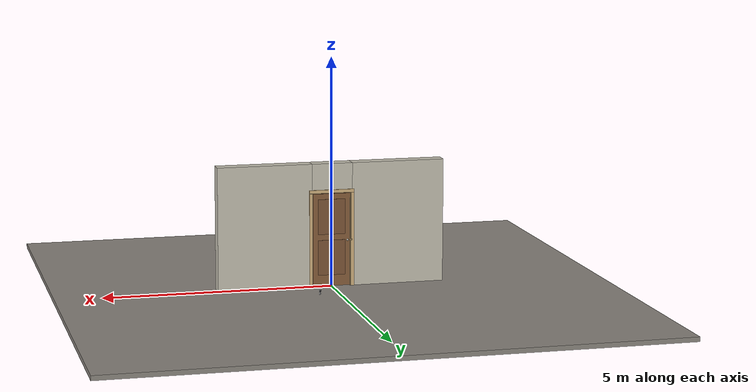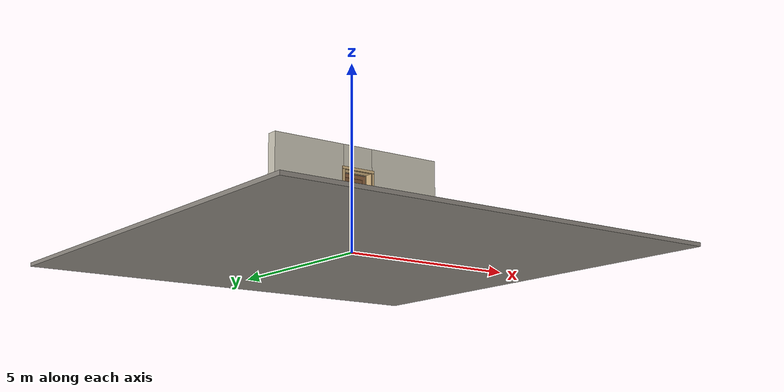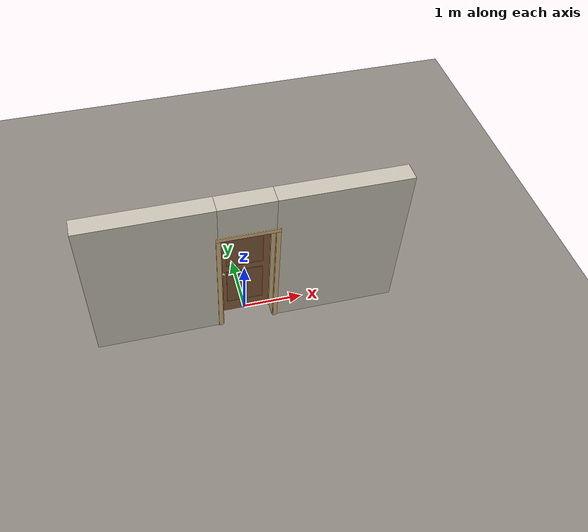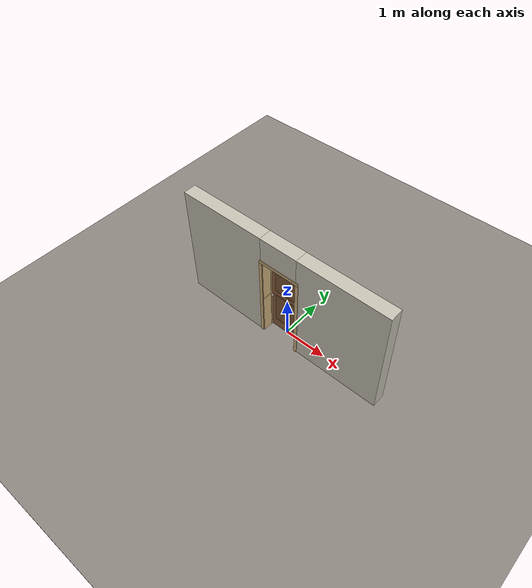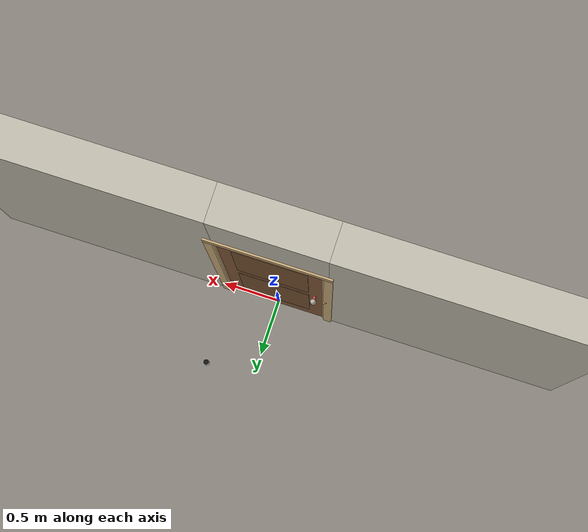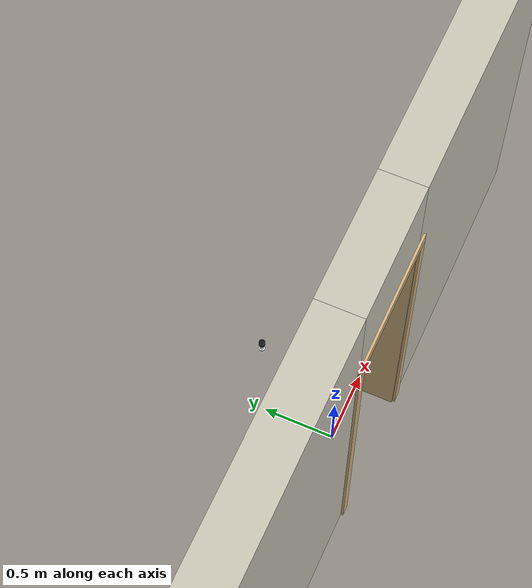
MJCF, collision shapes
<?xml version="1.0" ?>
<mujoco model="db0392_swing_single_full">
  <compiler angle="radian" meshdir="../../hardware" texturedir="../../textures" autolimits="true" inertiafromgeom="false"/>
  <option timestep="0.002" integrator="implicitfast" cone="elliptic" impratio="10" noslip_iterations="3">
    <flag multiccd="enable"/>
  </option>
  <size memory="16M"/>
  <default>
    <geom condim="4" solref="0.005 1" solimp="0.95 0.99 0.001"/>
    <joint solreflimit="0.005 1" solimplimit="0.95 0.99 0.001"/>
    <tendon solreflimit="0.005 1"/>
    <equality solref="0.002 1"/>
  </default>
  <visual>
    <headlight ambient="0.4 0.4 0.4" diffuse="0.7 0.7 0.7" specular="0.2 0.2 0.2"/>
    <quality shadowsize="4096"/>
    <map znear="0.01" zfar="60"/>
  </visual>
  <asset>
    <mesh name="hinge_96510cf394" file="hinge_96510cf394.obj"/>
    <mesh name="hinge_jamb_7fd4ca52b2" file="hinge_jamb_7fd4ca52b2.obj"/>
    <mesh name="knob_248d825e64" file="knob_248d825e64.obj"/>
    <mesh name="knob_d1888f6f03" file="knob_d1888f6f03.obj"/>
    <material name="mat_floor" rgba="0.55 0.53 0.5 1" specular="0.2" shininess="0.15" reflectance="0"/>
    <material name="mat_wall" rgba="0.78 0.76 0.7 1" specular="0.2" shininess="0.1" reflectance="0"/>
    <material name="mat_leaf" rgba="0.534 0.368 0.233 1" specular="0.2" shininess="0.5" reflectance="0"/>
    <material name="mat_leaf_panel" rgba="0.491 0.339 0.214 1" specular="0.2" shininess="0.5" reflectance="0"/>
    <material name="mat_hinge" rgba="0.65 0.66 0.68 1" specular="0.74" shininess="0.5" reflectance="0.36"/>
    <material name="mat_op_nickel_satin" rgba="0.72 0.7 0.66 1" specular="0.8" shininess="0.65" reflectance="0.4"/>
    <material name="mat_trim" rgba="0.85 0.66 0.3 1" specular="0.8" shininess="0.75" reflectance="0.4"/>
    <material name="mat_bolt" rgba="0.85 0.66 0.3 1" specular="0.8" shininess="0.75" reflectance="0.4"/>
    <material name="mat_frame" rgba="0.82 0.7 0.5 1" specular="0.2" shininess="0.45" reflectance="0"/>
    <material name="mat_seal" rgba="0.1 0.1 0.1 1" specular="0.2" shininess="0.1" reflectance="0"/>
    <material name="mat_bumper_stop" rgba="0.08 0.08 0.08 1" specular="0.2" shininess="0.1" reflectance="0"/>
    <material name="mat_stop_base" rgba="0.9 0.9 0.92 1" specular="0.8" shininess="0.9" reflectance="0.4"/>
    <texture name="skybox" type="skybox" builtin="gradient" rgb1="0.6 0.7 0.85" rgb2="0.9 0.92 0.95" width="256" height="256"/>
  </asset>
  <worldbody>
    <light name="sun" pos="1.5 -2.5 4" dir="-0.3 0.5 -0.8" directional="true" diffuse="0.8 0.8 0.8" specular="0.3 0.3 0.3" castshadow="true"/>
    <light name="fill" pos="-1.5 2.5 3" dir="0.3 -0.5 -0.7" directional="true" diffuse="0.35 0.35 0.4" castshadow="false"/>
    <camera name="robot_view" pos="0 -2.667687 1.734312" xyaxes="1 0 0 0 0.26963 0.962964" fovy="52"/>
    <camera name="far_view" pos="0 2.416687 1.734312" xyaxes="-1 0 0 0 -0.26963 0.962964" fovy="52"/>
    <camera name="iso" pos="-1.932062 -2.260938 2.141063" xyaxes="0.741536 -0.670913 0 0.242917 0.268487 0.932151" fovy="46"/>
    <camera name="detail_handle" pos="-0.166 -0.864 1.296" xyaxes="0.97561 0.219512 0 -0.070934 0.315262 0.94635" fovy="38"/>
    <geom name="floor" type="box" size="6 6 0.05" pos="0 0 -0.05" material="mat_floor" group="0" contype="1" conaffinity="1" friction="0.8 0.005 0.0001" density="2400"/>
    <geom name="wall_left" type="box" size="1.0205 0.15 1.35" pos="-1.4795 -0.1255 1.35" material="mat_wall" group="0" contype="1" conaffinity="1" friction="0.6 0.005 0.0001" density="800"/>
    <geom name="wall_right" type="box" size="1.0355 0.15 1.35" pos="1.4645 -0.1255 1.35" material="mat_wall" group="0" contype="1" conaffinity="1" friction="0.6 0.005 0.0001" density="800"/>
    <geom name="wall_header" type="box" size="0.444 0.15 0.303" pos="-0.015 -0.1255 2.397" material="mat_wall" group="0" contype="1" conaffinity="1" friction="0.6 0.005 0.0001" density="800"/>
    <geom name="hinge_0_jamb" type="mesh" mesh="hinge_jamb_7fd4ca52b2" pos="0.407 0.0245 0.259" quat="0 0 0 1" material="mat_hinge" group="1" contype="0" conaffinity="0" density="7850"/>
    <geom name="hinge_1_jamb" type="mesh" mesh="hinge_jamb_7fd4ca52b2" pos="0.407 0.0245 1.025" quat="0 0 0 1" material="mat_hinge" group="1" contype="0" conaffinity="0" density="7850"/>
    <geom name="hinge_2_jamb" type="mesh" mesh="hinge_jamb_7fd4ca52b2" pos="0.407 0.0245 1.861" quat="0 0 0 1" material="mat_hinge" group="1" contype="0" conaffinity="0" density="7850"/>
    <geom name="jamb_hinge" type="box" size="0.0095 0.15 1.0225" pos="0.4195 -0.1255 1.0225" material="mat_frame" group="0" contype="1" conaffinity="1" friction="0.6 0.005 0.0001" density="400"/>
    <geom name="strike_1016_wall_n" type="box" size="0.0245 0.133825 0.0167" pos="-0.4345 -0.141675 1.016" material="mat_frame" group="0" contype="1" conaffinity="1" friction="0.6 0.005 0.0001" density="400"/>
    <geom name="strike_1016_wall_p" type="box" size="0.0245 0.008 0.0167" pos="-0.4345 0.01585 1.016" material="mat_frame" group="0" contype="1" conaffinity="1" friction="0.6 0.005 0.0001" density="400"/>
    <geom name="strike_1016_ramp" type="box" size="0.0245 0.01649 0.0167" pos="-0.439136 0.028673 1.016" quat="0.977148 0 0 0.212558" material="mat_frame" group="0" contype="1" conaffinity="1" friction="0.12 0.005 0.0001" density="400"/>
    <geom name="strike_1016_back" type="box" size="0.01615 0.00785 0.0167" pos="-0.44285 0 1.016" material="mat_frame" group="0" contype="1" conaffinity="1" friction="0.6 0.005 0.0001" density="400"/>
    <geom name="jamb_strike_0" type="box" size="0.0245 0.15 0.49965" pos="-0.4345 -0.1255 0.49965" material="mat_frame" group="0" contype="1" conaffinity="1" friction="0.6 0.005 0.0001" density="400"/>
    <geom name="jamb_strike_1" type="box" size="0.0245 0.15 0.50615" pos="-0.4345 -0.1255 1.53885" material="mat_frame" group="0" contype="1" conaffinity="1" friction="0.6 0.005 0.0001" density="400"/>
    <geom name="jamb_head" type="box" size="0.444 0.15 0.0095" pos="-0.015 -0.1255 2.0545" material="mat_frame" group="0" contype="1" conaffinity="1" friction="0.6 0.005 0.0001" density="400"/>
    <geom name="head_stud" type="box" size="0.444 0.15 0.015" pos="-0.015 -0.1255 2.079" material="mat_wall" group="0" contype="1" conaffinity="1" friction="0.6 0.005 0.0001" density="500"/>
    <geom name="stop_hinge" type="box" size="0.0055 0.016 1.0225" pos="0.4045 -0.034 1.0225" material="mat_frame" group="0" contype="1" conaffinity="1" friction="0.6 0.005 0.0001" density="400"/>
    <geom name="stop_strike" type="box" size="0.0055 0.016 1.0225" pos="-0.4045 -0.034 1.0225" material="mat_frame" group="0" contype="1" conaffinity="1" friction="0.6 0.005 0.0001" density="400"/>
    <geom name="stop_head" type="box" size="0.41 0.016 0.0055" pos="0 -0.034 2.0395" material="mat_frame" group="0" contype="1" conaffinity="1" friction="0.6 0.005 0.0001" density="400"/>
    <geom name="seal_hinge" type="box" size="0.004 0.002 1.0225" pos="0.407 -0.0195 1.0225" material="mat_seal" group="1" contype="0" conaffinity="0" density="1100"/>
    <geom name="seal_strike" type="box" size="0.004 0.002 1.0225" pos="-0.407 -0.0195 1.0225" material="mat_seal" group="1" contype="0" conaffinity="0" density="1100"/>
    <geom name="seal_head" type="box" size="0.39 0.002 0.008" pos="0 -0.0195 2.033" material="mat_seal" group="1" contype="0" conaffinity="0" density="1100"/>
    <geom name="casing_l_n" type="box" size="0.035 0.008 1.032" pos="-0.459 -0.2835 1.0225" material="mat_frame" group="2" contype="0" conaffinity="0" density="400"/>
    <geom name="casing_r_n" type="box" size="0.035 0.008 1.032" pos="0.459 -0.2835 1.0225" material="mat_frame" group="2" contype="0" conaffinity="0" density="400"/>
    <geom name="casing_h_n" type="box" size="0.494 0.008 0.035" pos="0 -0.2835 2.094" material="mat_frame" group="2" contype="0" conaffinity="0" density="400"/>
    <geom name="casing_l_p" type="box" size="0.035 0.008 1.032" pos="-0.459 0.0325 1.0225" material="mat_frame" group="2" contype="0" conaffinity="0" density="400"/>
    <geom name="casing_r_p" type="box" size="0.035 0.008 1.032" pos="0.459 0.0325 1.0225" material="mat_frame" group="2" contype="0" conaffinity="0" density="400"/>
    <geom name="casing_h_p" type="box" size="0.494 0.008 0.035" pos="0 0.0325 2.094" material="mat_frame" group="2" contype="0" conaffinity="0" density="400"/>
    <geom name="door_stop_base" type="cylinder" size="0.022 0.003" pos="0.423 0.71555 0.003" material="mat_stop_base" group="0" contype="1" conaffinity="1" friction="0.6 0.005 0.0001" density="7850"/>
    <geom name="door_stop_post" type="cylinder" size="0.012 0.0245" pos="0.423 0.71555 0.0305" material="mat_stop_base" group="0" contype="1" conaffinity="1" friction="0.6 0.005 0.0001" density="7850"/>
    <geom name="door_stop_bumper" type="cylinder" size="0.022 0.02" pos="0.423 0.71555 0.075" material="mat_bumper_stop" group="0" contype="1" conaffinity="1" friction="0.6 0.005 0.0001" density="1100"/>
    <site name="approach_point" pos="0 -1.5 0" quat="1 0 0 0" size="0.05" rgba="0.2 0.9 0.2 0.5" group="4"/>
    <site name="goal_point" pos="0 1.5 0" quat="1 0 0 0" size="0.05" rgba="0.2 0.9 0.2 0.5" group="4"/>
    <site name="door_plane_center" pos="0 0 1.0225" quat="1 0 0 0" size="0.02" rgba="0.2 0.9 0.2 0.5" group="4"/>
    <body name="leaf" pos="0.41 0 0">
      <inertial pos="-0.40555 0.000147 1.025247" mass="40.626311" quat="0.499821 0.500344 -0.499651 0.500184" diaginertia="2.287649879 14.012282991 16.291413391"/>
      <joint name="leaf_hinge" type="hinge" axis="0 0 -1" pos="-0.003 0.0245 0" limited="true" range="0 1.570796" solreflimit="0.02 1" damping="0.210326" frictionloss="2.494229" armature="0.02"/>
      <geom name="leaf_slab" type="box" size="0.4065 0.0175 1.016" pos="-0.4095 0 1.025" material="mat_leaf" group="0" contype="1" conaffinity="1" friction="0.4 0.005 0.0001" density="1"/>
      <geom name="leaf_panel_0_n" type="box" size="0.2965 0.003 0.38422" pos="-0.4095 -0.0205 0.63674" material="mat_leaf_panel" group="1" contype="0" conaffinity="0" density="1"/>
      <geom name="leaf_panel_0_p" type="box" size="0.2965 0.003 0.38422" pos="-0.4095 0.0205 0.63674" material="mat_leaf_panel" group="1" contype="0" conaffinity="0" density="1"/>
      <geom name="leaf_panel_1_n" type="box" size="0.2965 0.003 0.38422" pos="-0.4095 -0.0205 1.53518" material="mat_leaf_panel" group="1" contype="0" conaffinity="0" density="1"/>
      <geom name="leaf_panel_1_p" type="box" size="0.2965 0.003 0.38422" pos="-0.4095 0.0205 1.53518" material="mat_leaf_panel" group="1" contype="0" conaffinity="0" density="1"/>
      <geom name="hinge_0" type="mesh" mesh="hinge_96510cf394" pos="-0.003 0.0245 0.259" quat="0 0 0 1" material="mat_hinge" group="1" contype="0" conaffinity="0" density="7850"/>
      <geom name="hinge_1" type="mesh" mesh="hinge_96510cf394" pos="-0.003 0.0245 1.025" quat="0 0 0 1" material="mat_hinge" group="1" contype="0" conaffinity="0" density="7850"/>
      <geom name="hinge_2" type="mesh" mesh="hinge_96510cf394" pos="-0.003 0.0245 1.861" quat="0 0 0 1" material="mat_hinge" group="1" contype="0" conaffinity="0" density="7850"/>
      <geom name="leaf_latch_bolt_faceplate" type="box" size="0.0006 0.01235 0.0267" pos="-0.8154 0 1.016" material="mat_bolt" group="1" contype="0" conaffinity="0" density="8500"/>
      <site name="leaf_edge_mid" pos="-0.816 0 1.016" quat="1 0 0 0" size="0.02" rgba="0.2 0.9 0.2 0.5" group="4"/>
      <body name="leaf_handle" pos="-0.756 0 1.016">
        <inertial pos="0 -0.000216 0" mass="1.146661" quat="0.5 0.5 0.5 0.5" diaginertia="0.000312402 0.003728942 0.003728942"/>
        <joint name="leaf_handle_hinge" type="hinge" axis="0 1 0" limited="true" range="0 0.87" damping="0.143613" frictionloss="0.038" stiffness="0.5" springref="-0.5" armature="0.01"/>
        <geom name="leaf_handle_spindle" type="cylinder" size="0.006 0.0255" pos="0 0 0" quat="0.707107 -0.707107 0 0" material="mat_op_nickel_satin" group="1" contype="0" conaffinity="0" density="7850"/>
        <geom name="leaf_handle_knob_n" type="mesh" mesh="knob_248d825e64" pos="0 -0.0175 0" quat="0 0 -0.707107 0.707107" material="mat_op_nickel_satin" group="1" contype="0" conaffinity="0" density="3000"/>
        <geom name="leaf_handle_knob_col_n" type="sphere" size="0.0243" pos="0 -0.064 0" material="mat_op_nickel_satin" group="0" contype="1" conaffinity="1" friction="0.9 0.01 0.0001" density="3000"/>
        <geom name="leaf_handle_knob_neck_n" type="cylinder" size="0.011 0.012" pos="0 -0.0295 0" quat="0.707107 -0.707107 0 0" material="mat_op_nickel_satin" group="3" contype="1" conaffinity="1" rgba="0.8 0.3 0.3 0.25" friction="0.6 0.005 0.0001" density="3000"/>
        <geom name="leaf_handle_knob_p" type="mesh" mesh="knob_d1888f6f03" pos="0 0.0175 0" quat="0 0 0.707107 0.707107" material="mat_op_nickel_satin" group="1" contype="0" conaffinity="0" density="3000"/>
        <geom name="leaf_handle_knob_col_p" type="sphere" size="0.0243" pos="0 0.064 0" material="mat_op_nickel_satin" group="0" contype="1" conaffinity="1" friction="0.9 0.01 0.0001" density="3000"/>
        <geom name="leaf_handle_knob_neck_p" type="cylinder" size="0.011 0.012" pos="0 0.0295 0" quat="0.707107 -0.707107 0 0" material="mat_op_nickel_satin" group="3" contype="1" conaffinity="1" rgba="0.8 0.3 0.3 0.25" friction="0.6 0.005 0.0001" density="3000"/>
        <site name="leaf_handle_grip_n" pos="0 -0.064 0" quat="1 0 0 0" size="0.012" rgba="0.2 0.9 0.2 0.5" group="4"/>
        <site name="leaf_handle_grip_p" pos="0 0.064 0" quat="1 0 0 0" size="0.012" rgba="0.2 0.9 0.2 0.5" group="4"/>
      </body>
      <body name="leaf_latch_bolt" pos="-0.816 0 1.016">
        <inertial pos="0.00865 0 0" mass="0.041419" quat="0.92388 0.382683 0 0" diaginertia="0.000000798 0.000005598 0.000005598"/>
        <joint name="leaf_latch_bolt_slide" type="slide" axis="1 0 0" limited="true" range="0 0.0127" damping="2" frictionloss="0.3" stiffness="300" springref="-0.008333" armature="0.1"/>
        <geom name="leaf_latch_bolt_capsule" type="capsule" size="0.00635 0.015" pos="0.00865 0 0" quat="0.707107 0 -0.707107 0" material="mat_bolt" group="0" contype="1" conaffinity="1" friction="0.2 0.005 0.0001" density="8500"/>
      </body>
    </body>
  </worldbody>
  <tendon>
    <fixed name="leaf_latch_bolt_coupling" limited="true" range="0 10">
      <joint joint="leaf_latch_bolt_slide" coef="1"/>
      <joint joint="leaf_handle_hinge" coef="-0.015679"/>
    </fixed>
  </tendon>
  <sensor>
    <jointpos name="leaf_hinge_pos" joint="leaf_hinge"/>
    <jointvel name="leaf_hinge_vel" joint="leaf_hinge"/>
    <jointpos name="leaf_handle_hinge_pos" joint="leaf_handle_hinge"/>
    <jointvel name="leaf_handle_hinge_vel" joint="leaf_handle_hinge"/>
    <jointpos name="leaf_latch_bolt_slide_pos" joint="leaf_latch_bolt_slide"/>
    <jointvel name="leaf_latch_bolt_slide_vel" joint="leaf_latch_bolt_slide"/>
  </sensor>
</mujoco>
